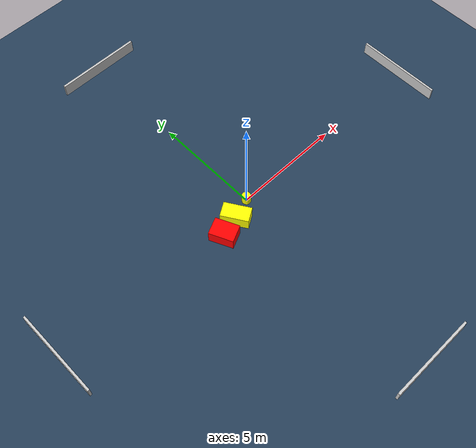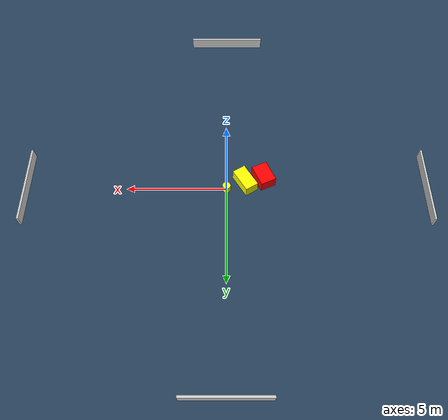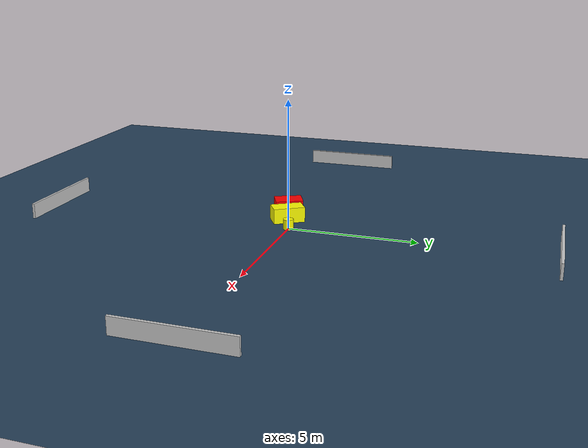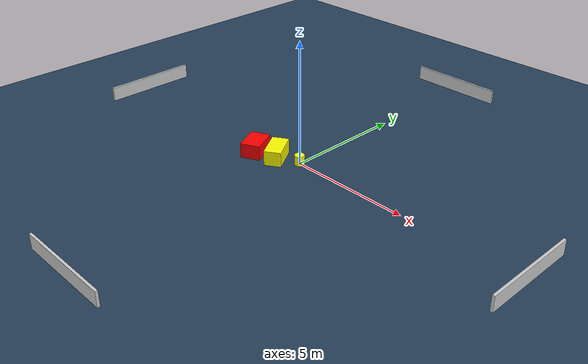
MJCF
<?xml version="1.0" ?>
<mujoco model="generated_environment">
  <option timestep="0.01" integrator="RK4" cone="elliptic"/>
  <default>
    <geom density="1"/>
  </default>
  <asset>
    <texture builtin="gradient" height="3072" name="skybox" rgb1="0.3 0.5 0.7" rgb2="0 0 0" type="skybox" width="512"/>
    <texture builtin="checker" height="300" name="groundplane" rgb1="0.2 0.3 0.4" rgb2="0.1 0.2 0.3" type="2d" width="300"/>
    <material name="groundplane" reflectance="0.2" texrepeat="5 5" texture="groundplane"/>
  </asset>
  <worldbody>
    <light dir="0 0 -1" directional="true" pos="0 0 1.5"/>
    <geom condim="3" friction="0.5 0.005 0.001" material="groundplane" name="floor" pos="0 0 0" size="0 0 0.05" type="plane"/>
    <body name="walls">
      <geom name="wall_1" condim="4" pos="-10.0 0.0 0.3" rgba="0.800000011920929 0.800000011920929 0.800000011920929 1.0" size="0.05 2.0 0.3" type="box"/>
      <geom name="wall_2" condim="4" pos="10.0 0.0 0.3" rgba="0.800000011920929 0.800000011920929 0.800000011920929 1.0" size="0.05 2.0 0.3" type="box"/>
      <geom name="wall_3" condim="4" pos="0.0 -10.0 0.3" rgba="0.800000011920929 0.800000011920929 0.800000011920929 1.0" size="2.0 0.05 0.3" type="box"/>
      <geom name="wall_4" condim="4" pos="0.0 10.0 0.3" rgba="0.800000011920929 0.800000011920929 0.800000011920929 1.0" size="2.0 0.05 0.3" type="box"/>
    </body>
    <body name="robot">
      <joint name="joint_x" type="slide" pos="0 0 0" axis="1 0 0"/>
      <joint name="joint_y" type="slide" pos="0 0 0" axis="0 1 0"/>
      <geom name="robot" type="cylinder" pos="0.0 0.0 0.2" size="0.2 0.2 0.0" mass="5.0" friction="1.0 0.005 0.0001" condim="4" rgba="1.0 1.0 0.0 1.0"/>
    </body>
    <body name="obstacle_1_movable">
      <geom name="obstacle_1_movable" condim="4" pos="-0.9360396318572028 -0.3402212961504438 0.3" euler="0 0 212.07098450234196" friction="0.0 0.005 0.001" rgba="1.0 1.0 0.0 1.0" size="0.34029156957771844 0.619318685460799 0.3" type="box" mass="0.1"/>
      <joint type="free"/>
    </body>
    <body name="obstacle_2_static">
      <geom name="obstacle_2_static" condim="4" pos="-1.87014319636403 -0.608618457028429 0.3" euler="0 0 24.919305427671294" friction="0.0 0.005 0.001" rgba="1.0 0.0 0.0 1.0" size="0.3996008423240499 0.5525858944423643 0.3" type="box"/>
    </body>
  </worldbody>
  <actuator>
    <motor name="actuator_x" joint="joint_x" gear="1" ctrlrange="-1 1"/>
    <motor name="actuator_y" joint="joint_y" gear="1" ctrlrange="-1 1"/>
  </actuator>
</mujoco>
